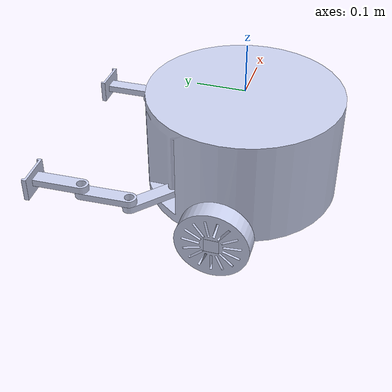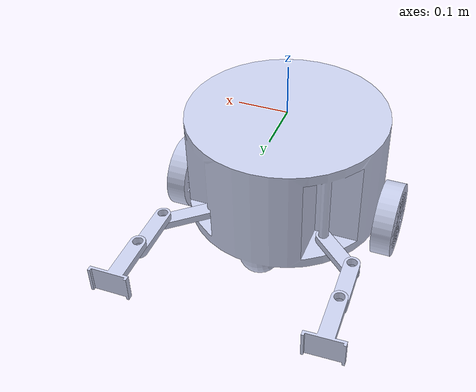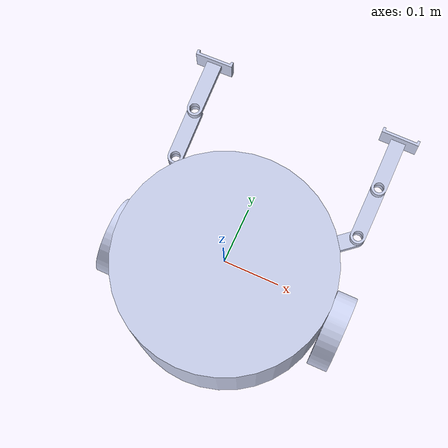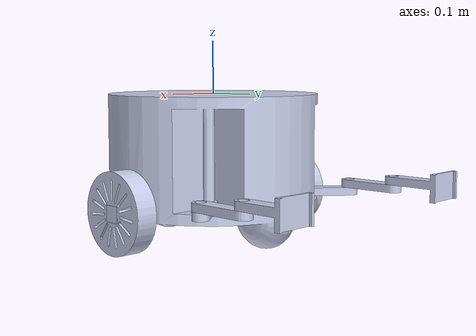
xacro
<?xml version="1.0" encoding="utf-8"?>

<robot xmlns:xacro="http://www.ros.org/wiki/xacro" name="URDF_bot_final_2">

  <link
    name="base_link">
    <inertial>
      <origin
        xyz="8.60422844084496E-16 -0.00697001255399204 -0.113640401660277"
        rpy="0 0 0" />
      <mass
        value="26.8879845162854" />
      <inertia
        ixx="0.385139507707689"
        ixy="-3.51992200976601E-16"
        ixz="-9.6673037334202E-16"
        iyy="0.376289539605871"
        iyz="0.000682246181241517"
        izz="0.521493886642275" />
    </inertial>
    <visual>
      <origin
        xyz="0 0 0"
        rpy="0 0 0" />
      <geometry>
        <mesh
          filename="package://mrs_gazebo_sim/meshes/base_link.STL" />
      </geometry>
      <material
        name="">
        <color
          rgba="0.792156862745098 0.819607843137255 0.933333333333333 1" />
      </material>
    </visual>
    <collision>
      <origin
        xyz="0 0 0"
        rpy="0 0 0" />
      <geometry>
        <mesh
          filename="package://mrs_gazebo_sim/meshes/base_link.STL" />
      </geometry>
    </collision>
  </link>
   <gazebo reference="base_link">
    <material>Gazebo/Red</material>
    <mu1 value="0.005"/>
    <mu2 value="0.005"/>
    <material>Gazebo/Red</material>
    <mu1 value="0.05"/>
    </gazebo>
  <link name="W_L">
    <inertial>
      <origin
        xyz="-1.11022302462516E-15 0.0202816466241088 5.55111512312578E-17"
        rpy="0 0 0" />
      <mass
        value="0.56046012382194" />
      <inertia
        ixx="0.000964865107374987"
        ixy="2.80987895356466E-18"
        ixz="-1.1664625765267E-19"
        iyy="0.00178033491000625"
        iyz="5.96074138738194E-19"
        izz="0.000964925835650445" />
    </inertial>
    <visual>
      <origin
        xyz="0 0 0"
        rpy="0 0 0" />
      <geometry>
        <mesh
          filename="package://mrs_gazebo_sim/meshes/W_L.STL" />
      </geometry>
      <material
        name="">
        <color
          rgba="0.792156862745098 0.819607843137255 0.933333333333333 1" />
      </material>
    </visual>
    <collision>
      <origin
        xyz="0 0 0"
        rpy="0 0 0" />
      <geometry>
        <mesh
          filename="package://mrs_gazebo_sim/meshes/W_L.STL" />
      </geometry>
    </collision>
  </link>
  <joint
    name="W_L_joint"
    type="continuous">
    <origin
      xyz="-0.239999999999999 0 -0.205000000000002"
      rpy="-3.14159265358979 0 1.5707963267949" />
    <parent
      link="base_link" />
    <child
      link="W_L" />
    <axis
      xyz="0 -1 0" />
  </joint>
  <gazebo reference="W_L">
    <material>Gazebo/Black</material>
  </gazebo>

  <link
    name="W_R">
    <inertial>
      <origin
        xyz="-5.55111512312578E-17 -0.0202816466241043 -4.16333634234434E-16"
        rpy="0 0 0" />
      <mass
        value="0.56046012382194" />
      <inertia
        ixx="0.000964865107374987"
        ixy="-3.09970833166368E-18"
        ixz="7.88018780428268E-20"
        iyy="0.00178033491000625"
        iyz="-1.25295594502704E-17"
        izz="0.000964925835650445" />
    </inertial>
    <visual>
      <origin
        xyz="0 0 0"
        rpy="0 0 0" />
      <geometry>
        <mesh
          filename="package://mrs_gazebo_sim/meshes/W_R.STL" />
      </geometry>
      <material
        name="">
        <color
          rgba="0.792156862745098 0.819607843137255 0.933333333333333 1" />
      </material>
    </visual>
    <collision>
      <origin
        xyz="0 0 0"
        rpy="0 0 0" />
      <geometry>
        <mesh
          filename="package://mrs_gazebo_sim/meshes/W_R.STL" />
      </geometry>
    </collision>
  </link>
  <joint
    name="W_R_joint"
    type="continuous">
    <origin
      xyz="0.240000000000001 0 -0.204999999999999"
      rpy="-3.14159265358979 0 1.5707963267949" />
    <parent
      link="base_link" />
    <child
      link="W_R" />
    <axis
      xyz="0 -1 0" />
  </joint>
  <gazebo reference="W_R">
    <material>Gazebo/Black</material>
  </gazebo>

  <link
    name="Pris_R_link">
    <inertial>
      <origin
        xyz="0.0074999999999997 0 0"
        rpy="0 0 0" />
      <mass
        value="0.0461780972450962" />
      <inertia
        ixx="5.12918276753618E-05"
        ixy="-1.24143784260085E-19"
        ixz="1.05369012081565E-20"
        iyy="4.60163160465626E-06"
        iyz="-4.44692297308508E-20"
        izz="4.84218747173967E-05" />
    </inertial>
    <visual>
      <origin
        xyz="0 0 0"
        rpy="0 0 0" />
      <geometry>
        <mesh
          filename="package://mrs_gazebo_sim/meshes/P1_R.STL" />
      </geometry>
      <material
        name="">
        <color
          rgba="0.792156862745098 0.819607843137255 0.933333333333333 1" />
      </material>
    </visual>
    <collision>
      <origin
        xyz="0 0 0"
        rpy="0 0 0" />
      <geometry>
        <mesh
          filename="package://mrs_gazebo_sim/meshes/P1_R.STL" />
      </geometry>
    </collision>
  </link>
  <joint
    name="Pris_R_joint"
    type="prismatic">
    <origin
      xyz="0.154649736298411 0.148648533555594 -0.182094440280863"
      rpy="0.870370202775625 1.5707963267949 0" />
    <parent
      link="base_link" />
    <child
      link="Pris_R_link" />
    <axis
      xyz="-1 0 0" />
    <limit
      lower="0"
      upper="0.15"
      effort="0.1"
      velocity="0.01" />
  </joint>
  <link
    name="Rev1_R_link">
    <inertial>
      <origin
        xyz="0.00750000000000009 0.05 5.55111512312578E-17"
        rpy="0 0 0" />
      <mass
        value="0.0461780972450962" />
      <inertia
        ixx="5.12918276753618E-05"
        ixy="1.7461282703913E-19"
        ixz="2.56580136426819E-21"
        iyy="4.60163160465626E-06"
        iyz="-1.0068607852118E-19"
        izz="4.84218747173967E-05" />
    </inertial>
    <visual>
      <origin
        xyz="0 0 0"
        rpy="0 0 0" />
      <geometry>
        <mesh
          filename="package://mrs_gazebo_sim/meshes/R1_R.STL" />
      </geometry>
      <material
        name="">
        <color
          rgba="0.792156862745098 0.819607843137255 0.933333333333333 1" />
      </material>
    </visual>
    <collision>
      <origin
        xyz="0 0 0"
        rpy="0 0 0" />
      <geometry>
        <mesh
          filename="package://mrs_gazebo_sim/meshes/R1_R.STL" />
      </geometry>
    </collision>
  </link>
  <joint
    name="Rev1_R_joint"
    type="revolute">
    <origin
      xyz="0 0.0500000000000001 0"
      rpy="-2.26886705484522 0 3.14159265358979" />
    <parent
      link="Pris_R_link" />
    <child
      link="Rev1_R_link" />
    <axis
      xyz="1 0 0" />
    <limit
      lower="-1.57"
      upper="0.78"
      effort="0.1"
      velocity="0.1" />
  </joint>
  <link
    name="Rev2_R_link">
    <inertial>
      <origin
        xyz="0.0231462742976176 -0.0659326410357274 0.000249370283456174"
        rpy="0 0 0" />
      <mass
        value="0.0668390486225481" />
      <inertia
        ixx="0.000100971656034691"
        ixy="1.60498639595143E-06"
        ixz="-2.3109653704175E-08"
        iyy="2.07628535797184E-05"
        iyz="6.19297276668896E-07"
        izz="9.08923415643615E-05" />
    </inertial>
    <visual>
      <origin
        xyz="0 0 0"
        rpy="0 0 0" />
      <geometry>
        <mesh
          filename="package://mrs_gazebo_sim/meshes/R2_R.STL" />
      </geometry>
      <material
        name="">
        <color
          rgba="0.792156862745098 0.819607843137255 0.933333333333333 1" />
      </material>
    </visual>
    <collision>
      <origin
        xyz="0 0 0"
        rpy="0 0 0" />
      <geometry>
        <mesh
          filename="package://mrs_gazebo_sim/meshes/R2_R.STL" />
      </geometry>
    </collision>
  </link>
  <joint
    name="Rev2_R_joint"
    type="revolute">
    <origin
      xyz="0 0.1 0"
      rpy="-3.13374920384741 0 0" />
    <parent
      link="Rev1_R_link" />
    <child
      link="Rev2_R_link" />
    <axis
      xyz="1 0 0" />
    <limit
      lower="-0.52"
      upper="3.14"
      effort="0.1"
      velocity="0.1" />
  </joint>
  <link
    name="Pris_L_link">
    <inertial>
      <origin
        xyz="0.00749999999999984 5.55111512312578E-17 2.77555756156289E-17"
        rpy="0 0 0" />
      <mass
        value="0.0461780972450962" />
      <inertia
        ixx="5.12918276753618E-05"
        ixy="9.29088277330331E-20"
        ixz="8.06265920000474E-21"
        iyy="4.60163160465626E-06"
        iyz="1.56701095242046E-20"
        izz="4.84218747173967E-05" />
    </inertial>
    <visual>
      <origin
        xyz="0 0 0"
        rpy="0 0 0" />
      <geometry>
        <mesh
          filename="package://mrs_gazebo_sim/meshes/P2_L.STL" />
      </geometry>
      <material
        name="">
        <color
          rgba="0.792156862745098 0.819607843137255 0.933333333333333 1" />
      </material>
    </visual>
    <collision>
      <origin
        xyz="0 0 0"
        rpy="0 0 0" />
      <geometry>
        <mesh
          filename="package://mrs_gazebo_sim/meshes/P2_L.STL" />
      </geometry>
    </collision>
  </link>
  <joint
    name="Pris_L_joint"
    type="prismatic">
    <origin
      xyz="-0.153814757931836 0.149613727495049 -0.181781659152969"
      rpy="2.29674794123281 1.5707963267949 0" />
    <parent
      link="base_link" />
    <child
      link="Pris_L_link" />
    <axis
      xyz="-1 0 0" />
    <limit
      lower="0"
      upper="0.15"
      effort="0.1"
      velocity="0.01" />
  </joint>
  <link
    name="Rev1_L_link">
    <inertial>
      <origin
        xyz="0.00749999999999995 0.05 3.46944695195361E-18"
        rpy="0 0 0" />
      <mass
        value="0.0461780972450962" />
      <inertia
        ixx="5.12918276753618E-05"
        ixy="1.78121309247091E-19"
        ixz="-1.80996776417054E-22"
        iyy="4.60163160465626E-06"
        iyz="1.6675961149069E-21"
        izz="4.84218747173967E-05" />
    </inertial>
    <visual>
      <origin
        xyz="0 0 0"
        rpy="0 0 0" />
      <geometry>
        <mesh
          filename="package://mrs_gazebo_sim/meshes/R1_L.STL" />
      </geometry>
      <material
        name="">
        <color
          rgba="0.792156862745098 0.819607843137255 0.933333333333333 1" />
      </material>
    </visual>
    <collision>
      <origin
        xyz="0 0 0"
        rpy="0 0 0" />
      <geometry>
        <mesh
          filename="package://mrs_gazebo_sim/meshes/R1_L.STL" />
      </geometry>
    </collision>
  </link>
  <joint
    name="Rev1_L_joint"
    type="revolute">
    <origin
      xyz="0 -0.0499999999999992 0"
      rpy="-0.801705358052037 0 3.14159265358979" />
    <parent
      link="Pris_L_link" />
    <child
      link="Rev1_L_link" />
    <axis
      xyz="1 0 0" />
    <limit
      lower="-0.78"
      upper="1.57"
      effort="0.1"
      velocity="0.1" />
  </joint>
  <link
    name="Rev2_L_link">
    <inertial>
      <origin
        xyz="-0.0218537257023807 -0.0659326410357276 0.000249370283452909"
        rpy="0 0 0" />
      <mass
        value="0.0668390486225481" />
      <inertia
        ixx="0.000100971656034691"
        ixy="1.60498639595202E-06"
        ixz="-2.31096537041645E-08"
        iyy="2.07628535797184E-05"
        iyz="6.19297276668749E-07"
        izz="9.08923415643614E-05" />
    </inertial>
    <visual>
      <origin
        xyz="0 0 0"
        rpy="0 0 0" />
      <geometry>
        <mesh
          filename="package://mrs_gazebo_sim/meshes/R2_L.STL" />
      </geometry>
      <material
        name="">
        <color
          rgba="0.792156862745098 0.819607843137255 0.933333333333333 1" />
      </material>
    </visual>
    <collision>
      <origin
        xyz="0 0 0"
        rpy="0 0 0" />
      <geometry>
        <mesh
          filename="package://mrs_gazebo_sim/meshes/R2_L.STL" />
      </geometry>
    </collision>
  </link>
  <joint
    name="Rev2_L_joint"
    type="revolute">
    <origin
      xyz="0 0.1 0"
      rpy="0.00784344973856893 0 -3.14159265358979" />
    <parent
      link="Rev1_L_link" />
    <child
      link="Rev2_L_link" />
    <axis
      xyz="1 0 0" />
    <limit
      lower="-0.52"
      upper="3.14"
      effort="0.1"
      velocity="0.1" />
  </joint>

  <gazebo>
 <plugin name="diff_drive" filename="libgazebo_ros_diff_drive.so">

  <right_joint>W_R_joint</right_joint>
  <left_joint>W_L_joint</left_joint>
  <wheel_separation>0.4</wheel_separation>
  <wheel_diameter>0.15</wheel_diameter>

  <max_wheel_torque>200</max_wheel_torque>
  <max_wheel_acceleration>10.0</max_wheel_acceleration>

  <odometry_frame>odom</odometry_frame>
  <robot_base_frame>base_link</robot_base_frame>

  <publish_odom>true</publish_odom>
  <publish_odom_tf>true</publish_odom_tf>
  <publish_wheel_tf>true</publish_wheel_tf>

 </plugin>

</gazebo>

</robot>
